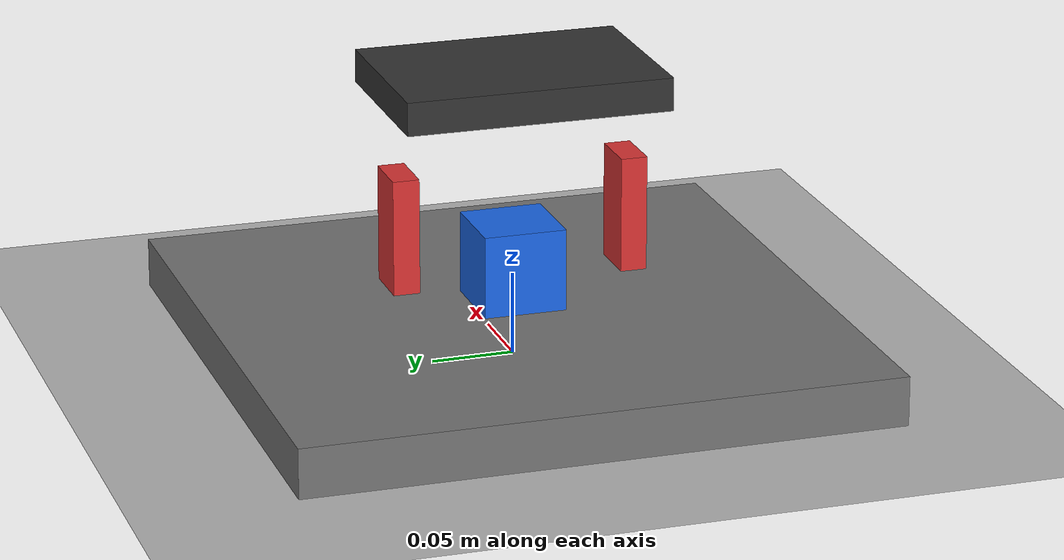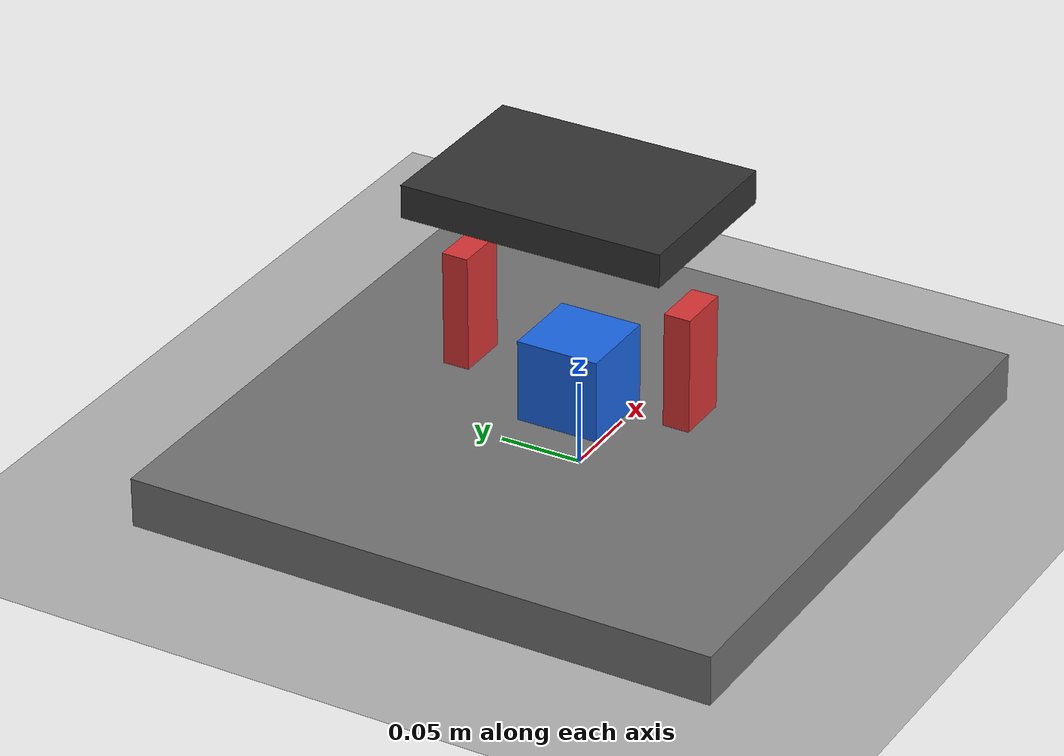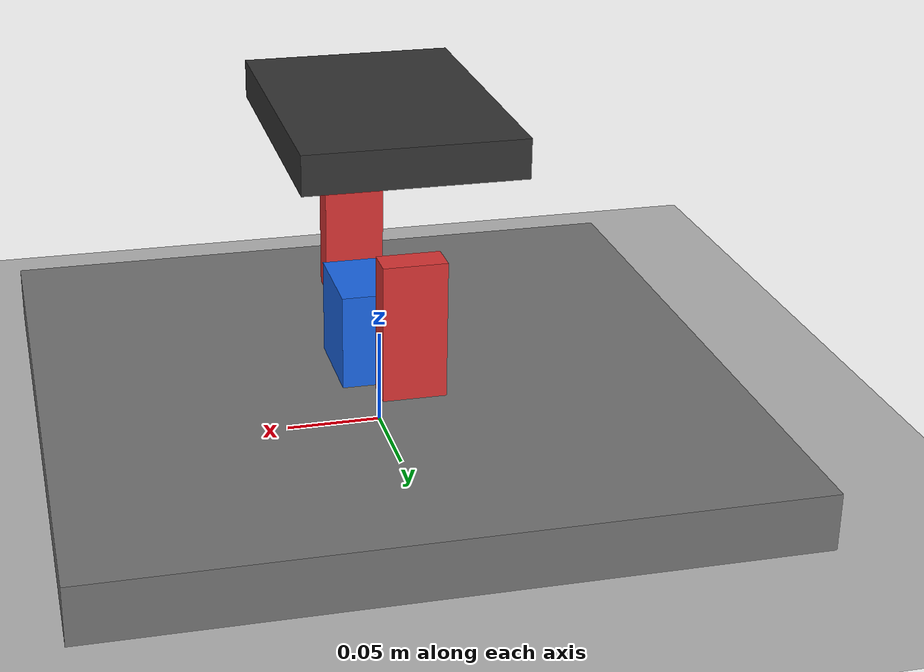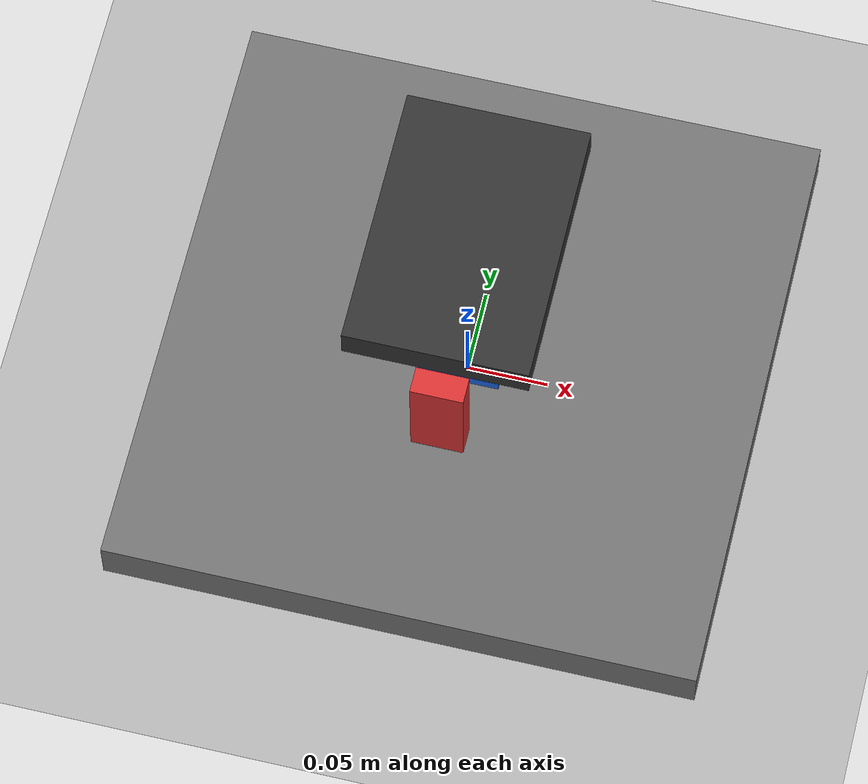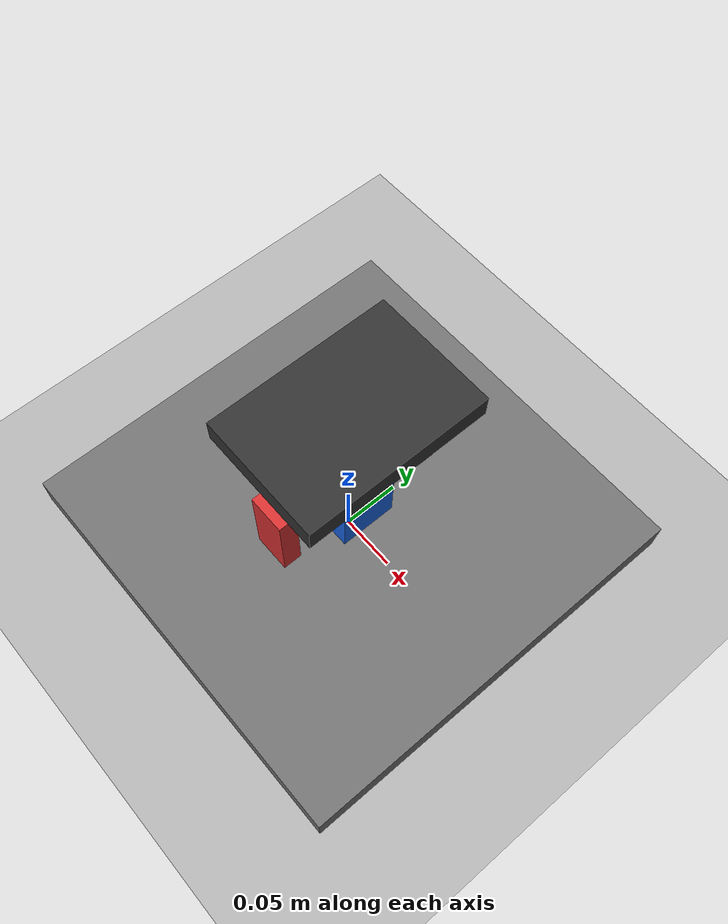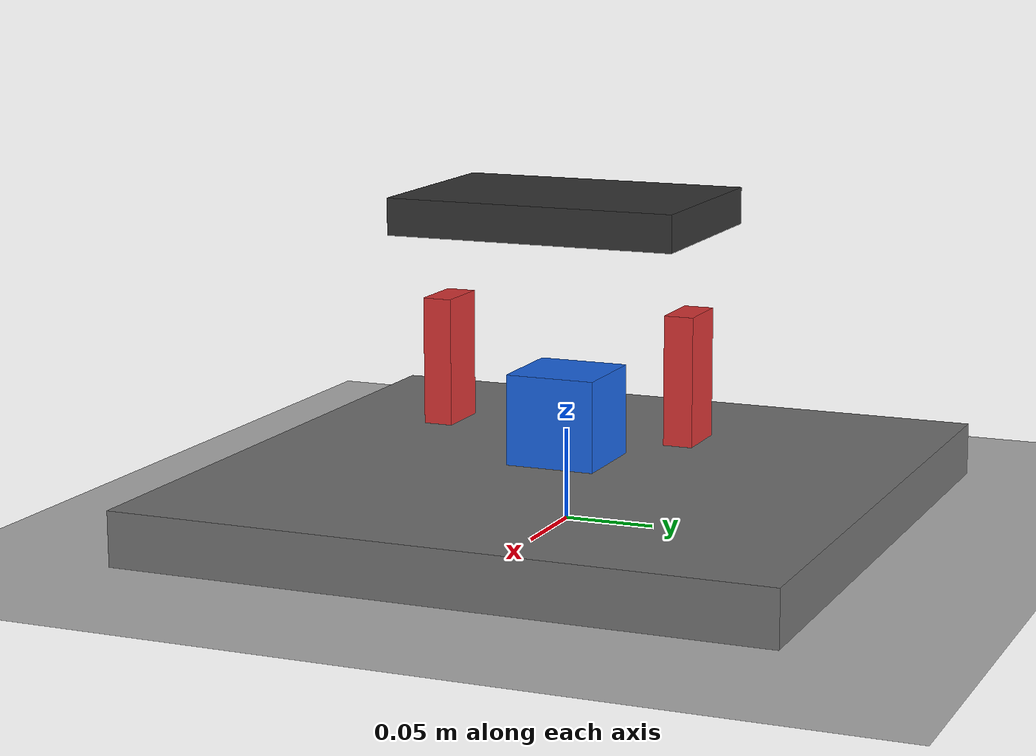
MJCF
<mujoco model="stage5_two_finger_grasp_cube_demo">
  <compiler angle="radian"/>
  <option timestep="0.002" gravity="0 0 -9.81"/>

  <default>
    <geom friction="4.0 1.0 0.02" solref="0.004 1" solimp="0.95 0.99 0.001"/>
    <joint damping="5"/>
  </default>

  <worldbody>
    <light name="top_light" pos="0 -0.5 1.0"/>
    <geom name="floor" type="plane" size="0.5 0.5 0.02" rgba="0.7 0.7 0.7 1"/>
    <geom name="table" type="box" pos="0 0 0.015" size="0.18 0.18 0.015" rgba="0.45 0.45 0.45 1"/>

    <!-- Toy cube for physical grasp smoke testing. This is not a real robot asset. -->
    <body name="cube" pos="0 0 0.058">
      <freejoint name="cube_free"/>
      <geom name="cube_geom" type="box" size="0.025 0.025 0.025" mass="0.03"
            friction="5.0 1.2 0.02" rgba="0.1 0.4 0.9 1"/>
    </body>

    <!-- Demo-only vertical two-finger gripper with one lift joint and two closing joints. -->
    <body name="gripper_lift" pos="0 0 0.165">
      <joint name="lift_z" type="slide" axis="0 0 1" limited="true" range="-0.03 0.18" damping="25"/>
      <geom name="palm_geom" type="box" pos="0 0 0.005" size="0.055 0.08 0.01" mass="0.2"
            contype="0" conaffinity="0" rgba="0.2 0.2 0.2 1"/>

      <body name="left_finger" pos="0 0.070 -0.060">
        <joint name="left_finger_slide" type="slide" axis="0 -1 0" limited="true" range="0 0.052" damping="12"/>
        <geom name="left_finger_geom" type="box" pos="0 0 -0.020" size="0.016 0.008 0.035"
              mass="0.05" friction="6.0 1.5 0.03" rgba="0.85 0.2 0.2 1"/>
      </body>

      <body name="right_finger" pos="0 -0.070 -0.060">
        <joint name="right_finger_slide" type="slide" axis="0 1 0" limited="true" range="0 0.052" damping="12"/>
        <geom name="right_finger_geom" type="box" pos="0 0 -0.020" size="0.016 0.008 0.035"
              mass="0.05" friction="6.0 1.5 0.03" rgba="0.85 0.2 0.2 1"/>
      </body>
    </body>
  </worldbody>

  <actuator>
    <position name="lift_z_ctrl" joint="lift_z" kp="450" ctrlrange="-0.03 0.18"/>
    <position name="left_finger_ctrl" joint="left_finger_slide" kp="260" ctrlrange="0 0.052"/>
    <position name="right_finger_ctrl" joint="right_finger_slide" kp="260" ctrlrange="0 0.052"/>
  </actuator>
</mujoco>
